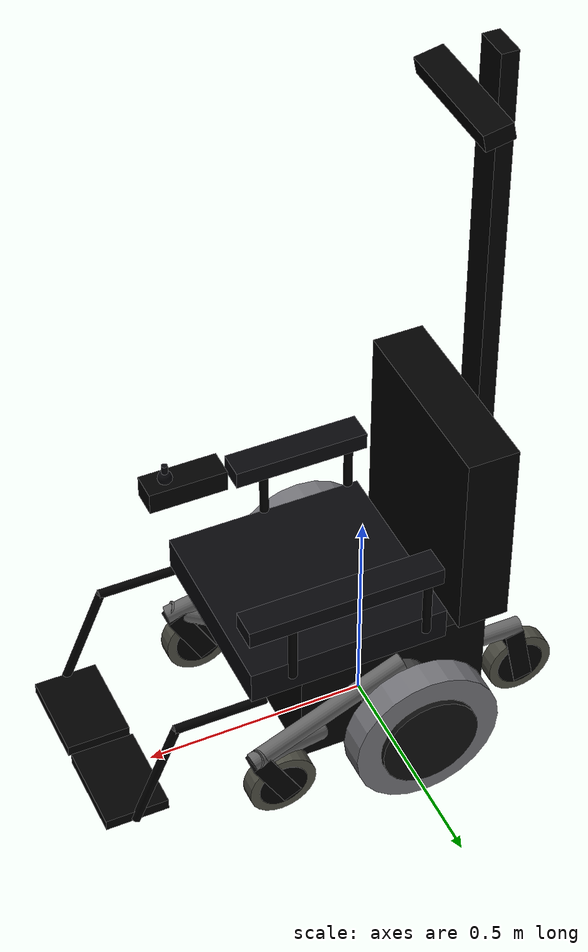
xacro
<?xml version="1.0"?>
<robot name="materials" xmlns:xacro="http://www.ros.org/wiki/xacro" >
  <xacro:property name="pi" value="3.14159265358979" />

  <!-- The total size for the collision boudning box. -->
  <xacro:property name="colllen" value="1.08" />
  <xacro:property name="collwidth" value="0.68" />
  <xacro:property name="collheight" value="1.65" />
  <xacro:property name="colloffsetx" value="0.141" />
  <xacro:property name="colloffsety" value="0.0" />
  <xacro:property name="colloffsetz" value="0.0" />
  <!-- The size of the battery box/area between the drive wheels. -->
  <xacro:property name="battlen" value="0.4318" />
  <xacro:property name="battwidth" value="0.3302" />
  <xacro:property name="battheight" value="0.254" />
  <link name="base_link">
  </link>

  <!-- Main battery box -->
  <link name="battery_box">
    <visual>
      <geometry>
	<box size="${battlen} ${battwidth} ${battheight}"/>
      </geometry>
      <material name="black">
	<color rgba="0 0 0 1"/>
      </material>
    </visual>
  </link>

  <joint name="base_to_batt_box" type="fixed">
    <parent link="base_link"/>
    <child link="battery_box"/>
    <origin xyz="0 0 ${battheight/2.0+0.04445}"/>
  </joint>

    <link name="collision_box">
    <visual>
      <geometry>
	<box size="0.01 0.01 0.01"/>
      </geometry>
      <material name="collision">
	<color rgba="0.8 0.8 1 0.1"/>
      </material>
    </visual>
    <collision>
      <geometry>
	<box size="${colllen} ${collwidth} ${collheight}"/>
      </geometry>
      <origin xyz="${colloffsetx} ${colloffsety} ${colloffsetz+collheight/2.0-(battheight/2.0+0.04445)}"/>
    </collision>
  </link>

  <joint name="batt_to_collision_box" type="fixed">
    <parent link="battery_box"/>
    <child link="collision_box"/>
    <origin xyz="0 0 0"/>
  </joint>

  <!-- Main battery box -->
  <link name="seat_lift">
    <visual>
      <geometry>
	<box size="0.2 0.2 0.15"/>
      </geometry>
      <material name="black">
	<color rgba="0 0 0 1"/>
      </material>
    </visual>
  </link>

  <joint name="batt_box_to_seat_lift" type="fixed">
    <parent link="battery_box"/>
    <child link="seat_lift"/>
    <origin xyz="0 0 ${battheight/2.0-0.02}"/>
  </joint>

  <!-- Tires and drive motors -->
  <xacro:property name="tireradius" value="0.1651" />
  <xacro:property name="tirewidth" value="0.0635" />
  <xacro:property name="hubradius" value="0.11" />
  <xacro:property name="hubwidth" value="0.05" />
  <xacro:property name="motorradius" value="0.0762" />
  <xacro:property name="motorwidth" value="0.1016" />

  <xacro:macro name="drivewheel" params="prefix reflect">
      <link name="${prefix}_motor">
      <visual>
	<geometry>
	  <cylinder length="${motorwidth}" radius="${motorradius}"/>
	</geometry>
	<origin xyz="0 0 0" rpy="0 0 0"/>
	<material name="motor">
	  <color rgba="0.25 0.25 0.25 1"/>
	</material>
      </visual>
    </link>

    <joint name="battery_to_${prefix}_motor" type="fixed">
      <parent link="battery_box"/>
      <child link="${prefix}_motor"/>
      <origin xyz="0 ${reflect*(battwidth/2.0+motorwidth/2.0)} 0" rpy="${pi/2} 0 0"/>
    </joint>

    <link name="${prefix}_drive_wheel">
      <visual>
	<geometry>
	  <cylinder length="${tirewidth}" radius="${tireradius}"/>
	</geometry>
	<origin xyz="0 0 0" rpy="0 0 0"/>
	<material name="tire">
	  <color rgba="0.45 0.45 0.47 1"/>
	</material>
      </visual>
    </link>

    <joint name="motor_to_${prefix}_drive_wheel" type="fixed">
      <parent link="${prefix}_motor"/>
      <child link="${prefix}_drive_wheel"/>
      <origin xyz="0 0 ${-reflect*(motorwidth/2.0+tirewidth/2.0)}" rpy="0 0 0"/>
    </joint>

    <link name="${prefix}_wheel_hub">
      <visual>
	<geometry>
	  <cylinder length="${hubwidth}" radius="${hubradius}"/>
	</geometry>
	<origin xyz="0 0 0" rpy="0 0 0"/>
	<material name="black_hub">
	  <color rgba="0.05 0.05 0.05 1"/>
	</material>
      </visual>
    </link>

    <joint name="wheel_to_${prefix}_hub" type="fixed">
      <parent link="${prefix}_drive_wheel"/>
      <child link="${prefix}_wheel_hub"/>
      <origin xyz="0 0 ${-reflect*0.02}" rpy="0 0 0"/>
    </joint>
  </xacro:macro>
  <xacro:drivewheel prefix="right" reflect="-1" />
  <xacro:drivewheel prefix="left" reflect="1" />

    <!-- Macro for the front casters -->
  <xacro:property name="casterradius" value="0.0762" />
  <xacro:property name="casterwidth" value="0.0381" />
  <xacro:property name="casterhubradius" value="0.055" />
  <xacro:property name="casterhubwidth" value="0.04" />
  <xacro:property name="casterheight" value="0.15" />

  <xacro:macro name="frontcaster" params="prefix reflect">
    <link name="${prefix}_caster_leg">
      <visual>
	<geometry>
	  <box size="0.04445 0.04445 ${casterheight}"/>
	</geometry>
	<origin xyz="0 0 0" rpy="0 0 0"/>
	<material name="black">
	  <color rgba="0 0 0 1"/>
	</material>
      </visual>
    </link>

    <link name="${prefix}_caster">
      <visual>
	<geometry>
	  <cylinder length="${casterwidth}" radius="${casterradius}"/>
	</geometry>
	<material name="caster">
	  <color rgba="0.3 0.3 0.26 1"/>
	</material>
      </visual>
    </link>

    <joint name="${prefix}_caster_leg_to_${prefix}_caster" type="fixed">
      <parent link="${prefix}_caster_leg"/>
      <child link="${prefix}_caster"/>
      <origin xyz="0 0 -0.03" rpy="${pi/2} 0 0"/>
    </joint>

    <link name="${prefix}_caster_hub">
      <visual>
	<geometry>
	  <cylinder length="${casterhubwidth}" radius="${casterhubradius}"/>
	</geometry>
	<material name="black">
	  <color rgba="0 0 0 1"/>
	</material>
      </visual>
    </link>

    <joint name="${prefix}_caster_hub_to_${prefix}_caster" type="fixed">
      <parent link="${prefix}_caster"/>
      <child link="${prefix}_caster_hub"/>
      <origin xyz="0 0 0" rpy="0 0 0"/>
    </joint>

    <link name="${prefix}_caster_bar_aux">
      <visual>
	<geometry>
	  <cylinder length="0.20" radius="0.02"/>
	</geometry>
	<origin xyz="0 0 0" rpy="0 ${pi/2} 0"/>
	<material name="silver">
	  <color rgba="0.4 0.4 0.4 1"/>
	</material>
      </visual>
    </link>

    <joint name="${prefix}_caster_bar_aux_joint" type="fixed">
      <parent link="${prefix}_caster_bar"/>
      <child link="${prefix}_caster_bar_aux"/>
      <origin xyz="0.10 ${reflect*-0.02} -0.05" rpy="0 -0.6 ${reflect*0.3}"/>
    </joint>

    <link name="${prefix}_caster_bar">
      <visual>
	<geometry>
	  <cylinder length="0.38" radius="0.02"/>
	</geometry>
	<origin xyz="0 0 0" rpy="0 ${pi/2} 0"/>
	<material name="silver">
	  <color rgba="0.4 0.4 0.4 1"/>
	</material>
      </visual>
    </link>

    <joint name="${prefix}_caster_bar_joint" type="fixed">
      <parent link="${prefix}_caster_bar"/>
      <child link="${prefix}_caster_leg"/>
      <origin xyz="0.16 0 ${-casterradius}" rpy="0 -0.2 ${reflect*(pi-0.1)}"/>
    </joint>

    <joint name="${prefix}_to_caster" type="fixed">
      <parent link="battery_box"/>
      <child link="${prefix}_caster_bar"/>
      <origin xyz="0.18 ${reflect*(battwidth/2.0+0.05)} 0.05" rpy="0 0.3 ${reflect*0.1}"/>
    </joint>
  </xacro:macro>
  <xacro:frontcaster prefix="front_right" reflect="-1" />
  <xacro:frontcaster prefix="front_left" reflect="1" />

  <!-- Macro for the rear casters -->
  <xacro:macro name="rearcaster" params="prefix reflect">
    <link name="${prefix}_caster_leg">
      <visual>
	<geometry>
	  <box size="0.04445 0.04445 ${casterheight}"/>
	</geometry>
	<origin xyz="0 0 0" rpy="0 0 0"/>
	<material name="black">
	  <color rgba="0 0 0 1"/>
	</material>
      </visual>
    </link>

    <link name="${prefix}_caster">
      <visual>
	<geometry>
	  <cylinder length="${casterwidth}" radius="${casterradius}"/>
	</geometry>
	<material name="caster">
	  <color rgba="0.3 0.3 0.26 1"/>
	</material>
      </visual>
    </link>

    <joint name="${prefix}_caster_leg_to_${prefix}_caster" type="fixed">
      <parent link="${prefix}_caster_leg"/>
      <child link="${prefix}_caster"/>
      <origin xyz="0 0 -0.03" rpy="${pi/2} 0 0"/>
    </joint>

    <link name="${prefix}_caster_hub">
      <visual>
	<geometry>
	  <cylinder length="${casterhubwidth}" radius="${casterhubradius}"/>
	</geometry>
	<material name="black">
	  <color rgba="0 0 0 1"/>
	</material>
      </visual>
    </link>

    <joint name="${prefix}_caster_hub_to_${prefix}_caster" type="fixed">
      <parent link="${prefix}_caster"/>
      <child link="${prefix}_caster_hub"/>
      <origin xyz="0 0 0" rpy="0 0 0"/>
    </joint>

    <link name="${prefix}_caster_bar">
      <visual>
	<geometry>
	  <cylinder length="0.1524" radius="0.02"/>
	</geometry>
	<origin xyz="0 0 0" rpy="0 ${pi/2.0} 0"/>
	<material name="silver">
	  <color rgba="0.4 0.4 0.4 1"/>
	</material>
      </visual>
    </link>

    <joint name="${prefix}_caster_bar_joint" type="fixed">
      <parent link="${prefix}_caster_bar"/>
      <child link="${prefix}_caster_leg"/>
      <origin xyz="-0.0712 0 ${-casterradius}" rpy="0 -0.2 ${pi}"/>
    </joint>

    <joint name="${prefix}_to_caster" type="fixed">
      <parent link="battery_box"/>
      <child link="${prefix}_caster_bar"/>
      <origin xyz="${-battlen/2.0-0.0712/2.0} ${reflect*0.12} 0" rpy="0 0 0"/>
    </joint>
  </xacro:macro>
  <xacro:rearcaster prefix="back_right" reflect="-1" />
  <xacro:rearcaster prefix="back_left" reflect="1" />

  <!-- Rider Cushion -->
  <xacro:property name="seatlen" value="0.4445" />
  <xacro:property name="seatwidth" value="0.4318" />
  <xacro:property name="seatheight" value="0.0762" />
  <link name="rider_seat">
    <visual>
      <geometry>
	<box size="${seatlen} ${seatwidth} ${seatheight}"/>
      </geometry>
      <material name="lightblack">
	<color rgba="0.025 0.025 0.04 1"/>
      </material>
    </visual>
  </link>

  <joint name="batt_to_seat" type="fixed">
    <parent link="battery_box"/>
    <child link="rider_seat"/>
    <origin xyz="0.13 0 0.2"/>
  </joint>

  <!-- Armrests -->
  <xacro:property name="armrestpolelen" value="0.18" />
  <xacro:property name="armrestpoleradius" value="0.01" />
  <xacro:property name="armrestwidth" value="0.0635" />
  <xacro:property name="armrestthickness" value="0.04" />
  <xacro:macro name="armrest" params="prefix armrestlength poleseparation">
    <link name="${prefix}_front_armrest_pole">
      <visual>
	<geometry>
	  <cylinder length="${armrestpolelen}" radius="${armrestpoleradius}"/>
	</geometry>
	<origin xyz="0 0 0" rpy="0 0 0"/>
	<material name="black">
	  <color rgba="0 0 0 1"/>
	</material>
      </visual>
    </link>

    <link name="${prefix}_rear_armrest_pole">
      <visual>
	<geometry>
	  <cylinder length="${armrestpolelen}" radius="${armrestpoleradius}"/>
	</geometry>
	<origin xyz="0 0 0" rpy="0 0 0"/>
	<material name="black">
	  <color rgba="0 0 0 1"/>
	</material>
      </visual>
    </link>

    <joint name="${prefix}_armrest_pole_to_pole" type="fixed">
      <parent link="${prefix}_front_armrest_pole"/>
      <child link="${prefix}_rear_armrest_pole"/>
      <origin xyz="${-poleseparation} 0 0" rpy="0 0 0"/>
    </joint>

    <link name="${prefix}_armrest_pad">
      <visual>
	<geometry>
	  <box size="${armrestlength} ${armrestwidth} ${armrestthickness}"/>
	</geometry>
      <material name="lightblack">
	<color rgba="0.025 0.025 0.04 1"/>
      </material>
      </visual>
    </link>

  <joint name="${prefix}_armrest_pad_to_pole" type="fixed">
    <parent link="${prefix}_front_armrest_pole"/>
    <child link="${prefix}_armrest_pad"/>
    <origin xyz="${-0.25*armrestlength} 0 ${armrestpolelen/2.0}"/>
  </joint>
  </xacro:macro>
  <xacro:property name="rightarmrestlength" value="0.3048" />
  <xacro:armrest prefix="left" armrestlength="0.4318" poleseparation="0.3048" />
  <xacro:armrest prefix="right" armrestlength="${rightarmrestlength}" poleseparation="0.20" />

  <joint name="seat_to_left_armrest" type="fixed">
    <parent link="rider_seat"/>
    <child link="left_front_armrest_pole"/>
    <origin xyz="0.13 ${seatwidth/2.0} ${armrestpolelen/2.0}"/>
  </joint>

  <joint name="seat_to_right_armrest" type="fixed">
    <parent link="rider_seat"/>
    <child link="right_front_armrest_pole"/>
    <origin xyz="0 ${-seatwidth/2.0} ${armrestpolelen/2.0}"/>
  </joint>

  <!-- Control Joystick -->
  <link name="joystick_box">
    <visual>
      <geometry>
	<box size="0.1778 0.0635 0.0508"/>
      </geometry>
      <material name="black">
	<color rgba="0 0 0 1"/>
      </material>
    </visual>
  </link>

  <joint name="right_armrest_to_joystick_box" type="fixed">
    <parent link="right_armrest_pad"/>
    <child link="joystick_box"/>
    <origin xyz="${rightarmrestlength/2.0+0.105} -0.01 0"/>
  </joint>

  <link name="joystick_ball">
    <visual>
      <geometry>
	<sphere radius="0.01651"/>
      </geometry>
      <material name="lightblack">
	<color rgba="0.025 0.025 0.04 1"/>
      </material>
    </visual>
  </link>

  <joint name="joystick_box_to_ball" type="fixed">
    <parent link="joystick_box"/>
    <child link="joystick_ball"/>
    <origin xyz="0.04 0 0.03175"/>
  </joint>

  <link name="joystick_stick">
    <visual>
      <geometry>
	<cylinder length="0.05" radius="0.007"/>
      </geometry>
      <material name="lightblack">
	<color rgba="0.025 0.025 0.04 1"/>
      </material>
    </visual>
  </link>

  <joint name="joystick_ball_to_stick" type="fixed">
    <parent link="joystick_ball"/>
    <child link="joystick_stick"/>
    <origin xyz="0 0 0.009525"/>
  </joint>

  <!-- Rider Back -->
  <xacro:property name="backdepth" value="0.1143" />
  <xacro:property name="backwidth" value="0.4318" />
  <xacro:property name="backheight" value="0.4572" />
  <link name="rider_back">
    <visual>
      <geometry>
	<box size="${backdepth} ${backwidth} ${backheight}"/>
      </geometry>
      <material name="black">
	<color rgba="0 0 0 1"/>
      </material>
    </visual>
  </link>

  <joint name="batt_to_back" type="fixed">
    <parent link="battery_box"/>
    <child link="rider_back"/>
    <origin xyz="-0.18 0 0.4"/>
  </joint>

  <!-- Leg Rests -->
  <xacro:property name="legrestlength" value="0.2032" />
  <xacro:property name="legrestheight" value="0.254" />
  <xacro:property name="legrestfootdepth" value="0.14" />
  <xacro:property name="legrestfootwidth" value="0.20" />
  <xacro:property name="legresttuberadius" value="0.01" />

  <xacro:macro name="legrest" params="prefix reflect">
    <link name="${prefix}_legrest_horizontal">
      <visual>
	<geometry>
	  <cylinder length="${legrestlength}" radius="${legresttuberadius}"/>
	</geometry>
	<origin xyz="0 0 0" rpy="0 0 0"/>
	<material name="black">
	  <color rgba="0 0 0 1"/>
	</material>
      </visual>
    </link>

    <joint name="${prefix}_legrest_to_batt" type="fixed">
      <parent link="battery_box"/>
      <child link="${prefix}_legrest_horizontal"/>
      <origin xyz="0.42 ${reflect*0.21} 0.15" rpy="0 ${pi/2} 0"/>
    </joint>

    <link name="${prefix}_legrest_vertical">
      <visual>
	<geometry>
	  <cylinder length="${legrestheight}" radius="${legresttuberadius}"/>
	</geometry>
	<origin xyz="0 0 ${legrestheight/2.0}" rpy="0 0 0"/>
	<material name="black">
	  <color rgba="0 0 0 1"/>
	</material>
      </visual>
    </link>

    <joint name="${prefix}_legrest_connection" type="fixed">
      <parent link="${prefix}_legrest_horizontal"/>
      <child link="${prefix}_legrest_vertical"/>
      <origin xyz="0 0 ${legrestlength/2.0-legresttuberadius/2.0}" rpy="0 ${pi/2-0.4} 0"/>
    </joint>

    <link name="${prefix}_footrest">
      <visual>
	<geometry>
	  <box size="${legrestfootdepth} ${legrestfootwidth} 0.0254"/>
	</geometry>
	<origin xyz="0 0 0" rpy="0 0 0"/>
	<material name="black">
	  <color rgba="0 0 0 1"/>
	</material>
      </visual>
    </link>

    <joint name="${prefix}_footrest_connection" type="fixed">
      <parent link="${prefix}_legrest_vertical"/>
      <child link="${prefix}_footrest"/>
      <origin xyz="0 ${-reflect*legrestfootwidth/2.0} ${legrestlength+0.04}" rpy="0 0.4 0"/>
    </joint>
  </xacro:macro>
  <xacro:legrest prefix="right" reflect="-1" />
  <xacro:legrest prefix="left" reflect="1" />

  <!-- Kinect Bar -->
  <xacro:property name="bardepth" value="0.0381" />
  <xacro:property name="barwidth" value="0.0762" />
  <xacro:property name="barheight" value="0.9525" />
  <link name="kinect_bar">
    <visual>
      <geometry>
	<box size="${bardepth} ${barwidth} ${barheight}"/>
      </geometry>
      <material name="black">
	<color rgba="0 0 0 1"/>
      </material>
    </visual>
  </link>

  <joint name="back_to_bar" type="fixed">
    <parent link="rider_back"/>
    <child link="kinect_bar"/>
    <origin xyz="${-bardepth/2.0-backdepth/2.0} 0 ${barheight/2.0+backheight/2.0-0.127}"/>
  </joint>

  <!-- Kinect -->
  <xacro:property name="kinectdepth" value="0.0635" />
  <xacro:property name="kinectwidth" value="0.2794" />
  <xacro:property name="kinectheight" value="0.0381" />
  <link name="kinect">
    <visual>
      <geometry>
	<box size="${kinectdepth} ${kinectwidth} ${kinectheight}"/>
      </geometry>
      <material name="kinect">
	<color rgba="0 0 0 1"/>
      </material>
    </visual>
  </link>

  <joint name="kinect_to_bar" type="fixed">
    <parent link="kinect_bar"/>
    <child link="kinect"/>
    <origin xyz="${kinectdepth/2.0+barwidth/2.0} 0 ${barheight/2.0-0.1016}" rpy="0 0.2 0" />
  </joint>

</robot>
